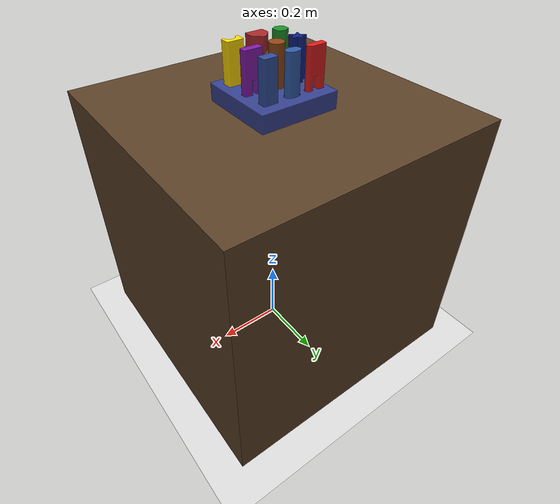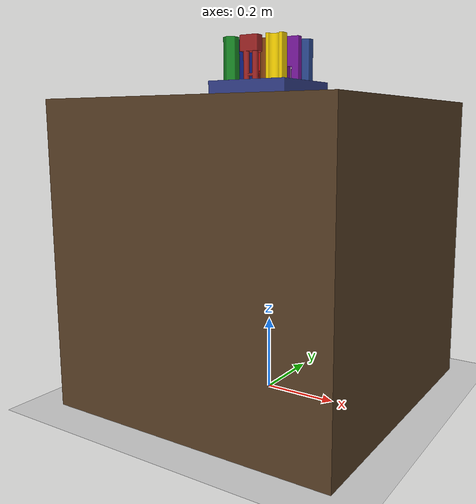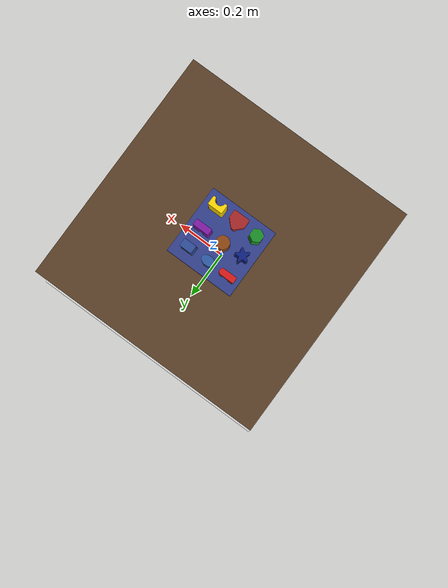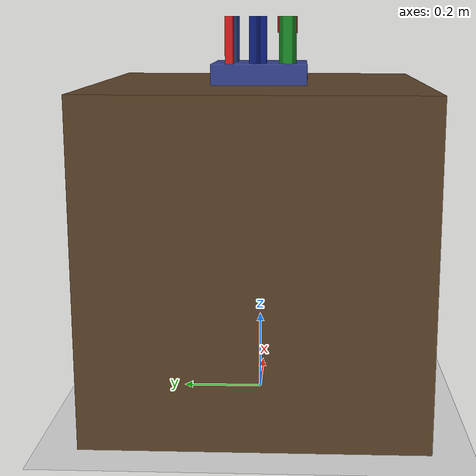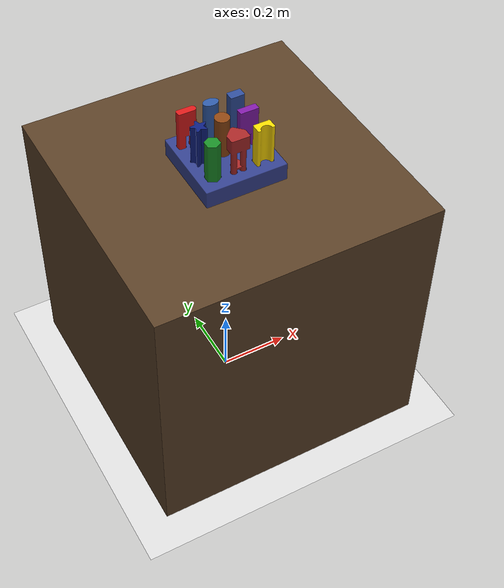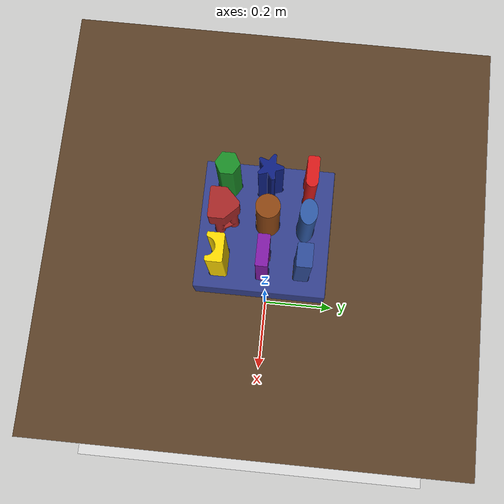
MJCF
<mujoco model="FMB M long">
  <compiler angle="radian" autolimits="true" meshdir="obj" texturedir="obj"/>
  <option integrator="RK4"/>
  <visual><global offwidth="1280" offheight="960"/></visual>
  <include file="floor_isaac.xml"/>
  <asset>
    <texture type="2d" name="light_wood" file="light_wood_v3.png"/>
    <material name="wt" texture="light_wood" specular="0.5" shininess="0.5" rgba="0.5 0.5 0.5 1"/>
    <mesh name="board_vis" file="hole_board_2/hole_board_2.obj"/>
    <mesh name="bc0" file="hole_board_2/hole_board_2_collision_0.obj"/>
    <mesh name="bc1" file="hole_board_2/hole_board_2_collision_1.obj"/>
    <mesh name="bc2" file="hole_board_2/hole_board_2_collision_10.obj"/>
    <mesh name="bc3" file="hole_board_2/hole_board_2_collision_100.obj"/>
    <mesh name="bc4" file="hole_board_2/hole_board_2_collision_101.obj"/>
    <mesh name="bc5" file="hole_board_2/hole_board_2_collision_102.obj"/>
    <mesh name="bc6" file="hole_board_2/hole_board_2_collision_103.obj"/>
    <mesh name="bc7" file="hole_board_2/hole_board_2_collision_104.obj"/>
    <mesh name="bc8" file="hole_board_2/hole_board_2_collision_105.obj"/>
    <mesh name="bc9" file="hole_board_2/hole_board_2_collision_106.obj"/>
    <mesh name="bc10" file="hole_board_2/hole_board_2_collision_107.obj"/>
    <mesh name="bc11" file="hole_board_2/hole_board_2_collision_108.obj"/>
    <mesh name="bc12" file="hole_board_2/hole_board_2_collision_109.obj"/>
    <mesh name="bc13" file="hole_board_2/hole_board_2_collision_11.obj"/>
    <mesh name="bc14" file="hole_board_2/hole_board_2_collision_110.obj"/>
    <mesh name="bc15" file="hole_board_2/hole_board_2_collision_111.obj"/>
    <mesh name="bc16" file="hole_board_2/hole_board_2_collision_112.obj"/>
    <mesh name="bc17" file="hole_board_2/hole_board_2_collision_113.obj"/>
    <mesh name="bc18" file="hole_board_2/hole_board_2_collision_114.obj"/>
    <mesh name="bc19" file="hole_board_2/hole_board_2_collision_115.obj"/>
    <mesh name="bc20" file="hole_board_2/hole_board_2_collision_116.obj"/>
    <mesh name="bc21" file="hole_board_2/hole_board_2_collision_117.obj"/>
    <mesh name="bc22" file="hole_board_2/hole_board_2_collision_118.obj"/>
    <mesh name="bc23" file="hole_board_2/hole_board_2_collision_119.obj"/>
    <mesh name="bc24" file="hole_board_2/hole_board_2_collision_12.obj"/>
    <mesh name="bc25" file="hole_board_2/hole_board_2_collision_120.obj"/>
    <mesh name="bc26" file="hole_board_2/hole_board_2_collision_121.obj"/>
    <mesh name="bc27" file="hole_board_2/hole_board_2_collision_122.obj"/>
    <mesh name="bc28" file="hole_board_2/hole_board_2_collision_123.obj"/>
    <mesh name="bc29" file="hole_board_2/hole_board_2_collision_124.obj"/>
    <mesh name="bc30" file="hole_board_2/hole_board_2_collision_125.obj"/>
    <mesh name="bc31" file="hole_board_2/hole_board_2_collision_126.obj"/>
    <mesh name="bc32" file="hole_board_2/hole_board_2_collision_127.obj"/>
    <mesh name="bc33" file="hole_board_2/hole_board_2_collision_128.obj"/>
    <mesh name="bc34" file="hole_board_2/hole_board_2_collision_129.obj"/>
    <mesh name="bc35" file="hole_board_2/hole_board_2_collision_13.obj"/>
    <mesh name="bc36" file="hole_board_2/hole_board_2_collision_130.obj"/>
    <mesh name="bc37" file="hole_board_2/hole_board_2_collision_131.obj"/>
    <mesh name="bc38" file="hole_board_2/hole_board_2_collision_132.obj"/>
    <mesh name="bc39" file="hole_board_2/hole_board_2_collision_133.obj"/>
    <mesh name="bc40" file="hole_board_2/hole_board_2_collision_134.obj"/>
    <mesh name="bc41" file="hole_board_2/hole_board_2_collision_135.obj"/>
    <mesh name="bc42" file="hole_board_2/hole_board_2_collision_136.obj"/>
    <mesh name="bc43" file="hole_board_2/hole_board_2_collision_137.obj"/>
    <mesh name="bc44" file="hole_board_2/hole_board_2_collision_138.obj"/>
    <mesh name="bc45" file="hole_board_2/hole_board_2_collision_139.obj"/>
    <mesh name="bc46" file="hole_board_2/hole_board_2_collision_14.obj"/>
    <mesh name="bc47" file="hole_board_2/hole_board_2_collision_140.obj"/>
    <mesh name="bc48" file="hole_board_2/hole_board_2_collision_141.obj"/>
    <mesh name="bc49" file="hole_board_2/hole_board_2_collision_142.obj"/>
    <mesh name="bc50" file="hole_board_2/hole_board_2_collision_143.obj"/>
    <mesh name="bc51" file="hole_board_2/hole_board_2_collision_15.obj"/>
    <mesh name="bc52" file="hole_board_2/hole_board_2_collision_16.obj"/>
    <mesh name="bc53" file="hole_board_2/hole_board_2_collision_17.obj"/>
    <mesh name="bc54" file="hole_board_2/hole_board_2_collision_18.obj"/>
    <mesh name="bc55" file="hole_board_2/hole_board_2_collision_19.obj"/>
    <mesh name="bc56" file="hole_board_2/hole_board_2_collision_2.obj"/>
    <mesh name="bc57" file="hole_board_2/hole_board_2_collision_20.obj"/>
    <mesh name="bc58" file="hole_board_2/hole_board_2_collision_21.obj"/>
    <mesh name="bc59" file="hole_board_2/hole_board_2_collision_22.obj"/>
    <mesh name="bc60" file="hole_board_2/hole_board_2_collision_23.obj"/>
    <mesh name="bc61" file="hole_board_2/hole_board_2_collision_24.obj"/>
    <mesh name="bc62" file="hole_board_2/hole_board_2_collision_25.obj"/>
    <mesh name="bc63" file="hole_board_2/hole_board_2_collision_26.obj"/>
    <mesh name="bc64" file="hole_board_2/hole_board_2_collision_27.obj"/>
    <mesh name="bc65" file="hole_board_2/hole_board_2_collision_28.obj"/>
    <mesh name="bc66" file="hole_board_2/hole_board_2_collision_29.obj"/>
    <mesh name="bc67" file="hole_board_2/hole_board_2_collision_3.obj"/>
    <mesh name="bc68" file="hole_board_2/hole_board_2_collision_30.obj"/>
    <mesh name="bc69" file="hole_board_2/hole_board_2_collision_31.obj"/>
    <mesh name="bc70" file="hole_board_2/hole_board_2_collision_32.obj"/>
    <mesh name="bc71" file="hole_board_2/hole_board_2_collision_33.obj"/>
    <mesh name="bc72" file="hole_board_2/hole_board_2_collision_34.obj"/>
    <mesh name="bc73" file="hole_board_2/hole_board_2_collision_35.obj"/>
    <mesh name="bc74" file="hole_board_2/hole_board_2_collision_36.obj"/>
    <mesh name="bc75" file="hole_board_2/hole_board_2_collision_37.obj"/>
    <mesh name="bc76" file="hole_board_2/hole_board_2_collision_38.obj"/>
    <mesh name="bc77" file="hole_board_2/hole_board_2_collision_39.obj"/>
    <mesh name="bc78" file="hole_board_2/hole_board_2_collision_4.obj"/>
    <mesh name="bc79" file="hole_board_2/hole_board_2_collision_40.obj"/>
    <mesh name="bc80" file="hole_board_2/hole_board_2_collision_41.obj"/>
    <mesh name="bc81" file="hole_board_2/hole_board_2_collision_42.obj"/>
    <mesh name="bc82" file="hole_board_2/hole_board_2_collision_43.obj"/>
    <mesh name="bc83" file="hole_board_2/hole_board_2_collision_44.obj"/>
    <mesh name="bc84" file="hole_board_2/hole_board_2_collision_45.obj"/>
    <mesh name="bc85" file="hole_board_2/hole_board_2_collision_46.obj"/>
    <mesh name="bc86" file="hole_board_2/hole_board_2_collision_47.obj"/>
    <mesh name="bc87" file="hole_board_2/hole_board_2_collision_48.obj"/>
    <mesh name="bc88" file="hole_board_2/hole_board_2_collision_49.obj"/>
    <mesh name="bc89" file="hole_board_2/hole_board_2_collision_5.obj"/>
    <mesh name="bc90" file="hole_board_2/hole_board_2_collision_50.obj"/>
    <mesh name="bc91" file="hole_board_2/hole_board_2_collision_51.obj"/>
    <mesh name="bc92" file="hole_board_2/hole_board_2_collision_52.obj"/>
    <mesh name="bc93" file="hole_board_2/hole_board_2_collision_53.obj"/>
    <mesh name="bc94" file="hole_board_2/hole_board_2_collision_54.obj"/>
    <mesh name="bc95" file="hole_board_2/hole_board_2_collision_55.obj"/>
    <mesh name="bc96" file="hole_board_2/hole_board_2_collision_56.obj"/>
    <mesh name="bc97" file="hole_board_2/hole_board_2_collision_57.obj"/>
    <mesh name="bc98" file="hole_board_2/hole_board_2_collision_58.obj"/>
    <mesh name="bc99" file="hole_board_2/hole_board_2_collision_59.obj"/>
    <mesh name="bc100" file="hole_board_2/hole_board_2_collision_6.obj"/>
    <mesh name="bc101" file="hole_board_2/hole_board_2_collision_60.obj"/>
    <mesh name="bc102" file="hole_board_2/hole_board_2_collision_61.obj"/>
    <mesh name="bc103" file="hole_board_2/hole_board_2_collision_62.obj"/>
    <mesh name="bc104" file="hole_board_2/hole_board_2_collision_63.obj"/>
    <mesh name="bc105" file="hole_board_2/hole_board_2_collision_64.obj"/>
    <mesh name="bc106" file="hole_board_2/hole_board_2_collision_65.obj"/>
    <mesh name="bc107" file="hole_board_2/hole_board_2_collision_66.obj"/>
    <mesh name="bc108" file="hole_board_2/hole_board_2_collision_67.obj"/>
    <mesh name="bc109" file="hole_board_2/hole_board_2_collision_68.obj"/>
    <mesh name="bc110" file="hole_board_2/hole_board_2_collision_69.obj"/>
    <mesh name="bc111" file="hole_board_2/hole_board_2_collision_7.obj"/>
    <mesh name="bc112" file="hole_board_2/hole_board_2_collision_70.obj"/>
    <mesh name="bc113" file="hole_board_2/hole_board_2_collision_71.obj"/>
    <mesh name="bc114" file="hole_board_2/hole_board_2_collision_72.obj"/>
    <mesh name="bc115" file="hole_board_2/hole_board_2_collision_73.obj"/>
    <mesh name="bc116" file="hole_board_2/hole_board_2_collision_74.obj"/>
    <mesh name="bc117" file="hole_board_2/hole_board_2_collision_75.obj"/>
    <mesh name="bc118" file="hole_board_2/hole_board_2_collision_76.obj"/>
    <mesh name="bc119" file="hole_board_2/hole_board_2_collision_77.obj"/>
    <mesh name="bc120" file="hole_board_2/hole_board_2_collision_78.obj"/>
    <mesh name="bc121" file="hole_board_2/hole_board_2_collision_79.obj"/>
    <mesh name="bc122" file="hole_board_2/hole_board_2_collision_8.obj"/>
    <mesh name="bc123" file="hole_board_2/hole_board_2_collision_80.obj"/>
    <mesh name="bc124" file="hole_board_2/hole_board_2_collision_81.obj"/>
    <mesh name="bc125" file="hole_board_2/hole_board_2_collision_82.obj"/>
    <mesh name="bc126" file="hole_board_2/hole_board_2_collision_83.obj"/>
    <mesh name="bc127" file="hole_board_2/hole_board_2_collision_84.obj"/>
    <mesh name="bc128" file="hole_board_2/hole_board_2_collision_85.obj"/>
    <mesh name="bc129" file="hole_board_2/hole_board_2_collision_86.obj"/>
    <mesh name="bc130" file="hole_board_2/hole_board_2_collision_87.obj"/>
    <mesh name="bc131" file="hole_board_2/hole_board_2_collision_88.obj"/>
    <mesh name="bc132" file="hole_board_2/hole_board_2_collision_89.obj"/>
    <mesh name="bc133" file="hole_board_2/hole_board_2_collision_9.obj"/>
    <mesh name="bc134" file="hole_board_2/hole_board_2_collision_90.obj"/>
    <mesh name="bc135" file="hole_board_2/hole_board_2_collision_91.obj"/>
    <mesh name="bc136" file="hole_board_2/hole_board_2_collision_92.obj"/>
    <mesh name="bc137" file="hole_board_2/hole_board_2_collision_93.obj"/>
    <mesh name="bc138" file="hole_board_2/hole_board_2_collision_94.obj"/>
    <mesh name="bc139" file="hole_board_2/hole_board_2_collision_95.obj"/>
    <mesh name="bc140" file="hole_board_2/hole_board_2_collision_96.obj"/>
    <mesh name="bc141" file="hole_board_2/hole_board_2_collision_97.obj"/>
    <mesh name="bc142" file="hole_board_2/hole_board_2_collision_98.obj"/>
    <mesh name="bc143" file="hole_board_2/hole_board_2_collision_99.obj"/>
    <mesh name="peg_circle_M_long" file="peg_circle_M_long/peg_circle_M_long.obj"/>
    <mesh name="peg_circle_M_long_c0" file="peg_circle_M_long/peg_circle_M_long_collision_0.obj"/>
    <mesh name="peg_oval_M_long" file="peg_oval_M_long/peg_oval_M_long.obj"/>
    <mesh name="peg_oval_M_long_c0" file="peg_oval_M_long/peg_oval_M_long_collision_0.obj"/>
    <mesh name="peg_rectangle_M_long" file="peg_rectangle_M_long/peg_rectangle_M_long.obj"/>
    <mesh name="peg_rectangle_M_long_c0" file="peg_rectangle_M_long/peg_rectangle_M_long_collision_0.obj"/>
    <mesh name="peg_hexagon_M_long" file="peg_hexagon_M_long/peg_hexagon_M_long.obj"/>
    <mesh name="peg_hexagon_M_long_c0" file="peg_hexagon_M_long/peg_hexagon_M_long_collision_0.obj"/>
    <mesh name="peg_arch_M_long" file="peg_arch_M_long/peg_arch_M_long.obj"/>
    <mesh name="peg_arch_M_long_c0" file="peg_arch_M_long/peg_arch_M_long_collision_0.obj"/>
    <mesh name="peg_arch_M_long_c1" file="peg_arch_M_long/peg_arch_M_long_collision_1.obj"/>
    <mesh name="peg_star_M_long" file="peg_star_M_long/peg_star_M_long.obj"/>
    <mesh name="peg_star_M_long_c0" file="peg_star_M_long/peg_star_M_long_collision_0.obj"/>
    <mesh name="peg_star_M_long_c1" file="peg_star_M_long/peg_star_M_long_collision_1.obj"/>
    <mesh name="peg_star_M_long_c2" file="peg_star_M_long/peg_star_M_long_collision_2.obj"/>
    <mesh name="peg_star_M_long_c3" file="peg_star_M_long/peg_star_M_long_collision_3.obj"/>
    <mesh name="peg_3prong_M_long" file="peg_3prong_M_long/peg_3prong_M_long.obj"/>
    <mesh name="peg_3prong_M_long_c0" file="peg_3prong_M_long/peg_3prong_M_long_collision_0.obj"/>
    <mesh name="peg_3prong_M_long_c1" file="peg_3prong_M_long/peg_3prong_M_long_collision_1.obj"/>
    <mesh name="peg_3prong_M_long_c10" file="peg_3prong_M_long/peg_3prong_M_long_collision_10.obj"/>
    <mesh name="peg_3prong_M_long_c11" file="peg_3prong_M_long/peg_3prong_M_long_collision_11.obj"/>
    <mesh name="peg_3prong_M_long_c12" file="peg_3prong_M_long/peg_3prong_M_long_collision_12.obj"/>
    <mesh name="peg_3prong_M_long_c2" file="peg_3prong_M_long/peg_3prong_M_long_collision_2.obj"/>
    <mesh name="peg_3prong_M_long_c3" file="peg_3prong_M_long/peg_3prong_M_long_collision_3.obj"/>
    <mesh name="peg_3prong_M_long_c4" file="peg_3prong_M_long/peg_3prong_M_long_collision_4.obj"/>
    <mesh name="peg_3prong_M_long_c5" file="peg_3prong_M_long/peg_3prong_M_long_collision_5.obj"/>
    <mesh name="peg_3prong_M_long_c6" file="peg_3prong_M_long/peg_3prong_M_long_collision_6.obj"/>
    <mesh name="peg_3prong_M_long_c7" file="peg_3prong_M_long/peg_3prong_M_long_collision_7.obj"/>
    <mesh name="peg_3prong_M_long_c8" file="peg_3prong_M_long/peg_3prong_M_long_collision_8.obj"/>
    <mesh name="peg_3prong_M_long_c9" file="peg_3prong_M_long/peg_3prong_M_long_collision_9.obj"/>
    <mesh name="peg_doublesquare_M_long" file="peg_doublesquare_M_long/peg_doublesquare_M_long.obj"/>
    <mesh name="peg_doublesquare_M_long_c0" file="peg_doublesquare_M_long/peg_doublesquare_M_long_collision_0.obj"/>
    <mesh name="peg_doublesquare_M_long_c1" file="peg_doublesquare_M_long/peg_doublesquare_M_long_collision_1.obj"/>
    <mesh name="peg_doublesquare_M_long_c2" file="peg_doublesquare_M_long/peg_doublesquare_M_long_collision_2.obj"/>
    <mesh name="peg_squarecircle_M_long" file="peg_squarecircle_M_long/peg_squarecircle_M_long.obj"/>
    <mesh name="peg_squarecircle_M_long_c0" file="peg_squarecircle_M_long/peg_squarecircle_M_long_collision_0.obj"/>
    <mesh name="peg_squarecircle_M_long_c1" file="peg_squarecircle_M_long/peg_squarecircle_M_long_collision_1.obj"/>
    <mesh name="peg_squarecircle_M_long_c2" file="peg_squarecircle_M_long/peg_squarecircle_M_long_collision_2.obj"/>
  </asset>
  <worldbody>
    <body name="table"><geom type="box" size="0.4 0.4 0.4" pos="0 0 0.4" material="wt" mass="100"/></body>
    <body name="board" pos="0 0 0.8">
      <geom mesh="board_vis" group="2" type="mesh" contype="0" conaffinity="0" rgba="0.2 0.25 0.55 1"/>
      <geom mesh="bc0" type="mesh" rgba="0 0 0 0"/>
      <geom mesh="bc1" type="mesh" rgba="0 0 0 0"/>
      <geom mesh="bc2" type="mesh" rgba="0 0 0 0"/>
      <geom mesh="bc3" type="mesh" rgba="0 0 0 0"/>
      <geom mesh="bc4" type="mesh" rgba="0 0 0 0"/>
      <geom mesh="bc5" type="mesh" rgba="0 0 0 0"/>
      <geom mesh="bc6" type="mesh" rgba="0 0 0 0"/>
      <geom mesh="bc7" type="mesh" rgba="0 0 0 0"/>
      <geom mesh="bc8" type="mesh" rgba="0 0 0 0"/>
      <geom mesh="bc9" type="mesh" rgba="0 0 0 0"/>
      <geom mesh="bc10" type="mesh" rgba="0 0 0 0"/>
      <geom mesh="bc11" type="mesh" rgba="0 0 0 0"/>
      <geom mesh="bc12" type="mesh" rgba="0 0 0 0"/>
      <geom mesh="bc13" type="mesh" rgba="0 0 0 0"/>
      <geom mesh="bc14" type="mesh" rgba="0 0 0 0"/>
      <geom mesh="bc15" type="mesh" rgba="0 0 0 0"/>
      <geom mesh="bc16" type="mesh" rgba="0 0 0 0"/>
      <geom mesh="bc17" type="mesh" rgba="0 0 0 0"/>
      <geom mesh="bc18" type="mesh" rgba="0 0 0 0"/>
      <geom mesh="bc19" type="mesh" rgba="0 0 0 0"/>
      <geom mesh="bc20" type="mesh" rgba="0 0 0 0"/>
      <geom mesh="bc21" type="mesh" rgba="0 0 0 0"/>
      <geom mesh="bc22" type="mesh" rgba="0 0 0 0"/>
      <geom mesh="bc23" type="mesh" rgba="0 0 0 0"/>
      <geom mesh="bc24" type="mesh" rgba="0 0 0 0"/>
      <geom mesh="bc25" type="mesh" rgba="0 0 0 0"/>
      <geom mesh="bc26" type="mesh" rgba="0 0 0 0"/>
      <geom mesh="bc27" type="mesh" rgba="0 0 0 0"/>
      <geom mesh="bc28" type="mesh" rgba="0 0 0 0"/>
      <geom mesh="bc29" type="mesh" rgba="0 0 0 0"/>
      <geom mesh="bc30" type="mesh" rgba="0 0 0 0"/>
      <geom mesh="bc31" type="mesh" rgba="0 0 0 0"/>
      <geom mesh="bc32" type="mesh" rgba="0 0 0 0"/>
      <geom mesh="bc33" type="mesh" rgba="0 0 0 0"/>
      <geom mesh="bc34" type="mesh" rgba="0 0 0 0"/>
      <geom mesh="bc35" type="mesh" rgba="0 0 0 0"/>
      <geom mesh="bc36" type="mesh" rgba="0 0 0 0"/>
      <geom mesh="bc37" type="mesh" rgba="0 0 0 0"/>
      <geom mesh="bc38" type="mesh" rgba="0 0 0 0"/>
      <geom mesh="bc39" type="mesh" rgba="0 0 0 0"/>
      <geom mesh="bc40" type="mesh" rgba="0 0 0 0"/>
      <geom mesh="bc41" type="mesh" rgba="0 0 0 0"/>
      <geom mesh="bc42" type="mesh" rgba="0 0 0 0"/>
      <geom mesh="bc43" type="mesh" rgba="0 0 0 0"/>
      <geom mesh="bc44" type="mesh" rgba="0 0 0 0"/>
      <geom mesh="bc45" type="mesh" rgba="0 0 0 0"/>
      <geom mesh="bc46" type="mesh" rgba="0 0 0 0"/>
      <geom mesh="bc47" type="mesh" rgba="0 0 0 0"/>
      <geom mesh="bc48" type="mesh" rgba="0 0 0 0"/>
      <geom mesh="bc49" type="mesh" rgba="0 0 0 0"/>
      <geom mesh="bc50" type="mesh" rgba="0 0 0 0"/>
      <geom mesh="bc51" type="mesh" rgba="0 0 0 0"/>
      <geom mesh="bc52" type="mesh" rgba="0 0 0 0"/>
      <geom mesh="bc53" type="mesh" rgba="0 0 0 0"/>
      <geom mesh="bc54" type="mesh" rgba="0 0 0 0"/>
      <geom mesh="bc55" type="mesh" rgba="0 0 0 0"/>
      <geom mesh="bc56" type="mesh" rgba="0 0 0 0"/>
      <geom mesh="bc57" type="mesh" rgba="0 0 0 0"/>
      <geom mesh="bc58" type="mesh" rgba="0 0 0 0"/>
      <geom mesh="bc59" type="mesh" rgba="0 0 0 0"/>
      <geom mesh="bc60" type="mesh" rgba="0 0 0 0"/>
      <geom mesh="bc61" type="mesh" rgba="0 0 0 0"/>
      <geom mesh="bc62" type="mesh" rgba="0 0 0 0"/>
      <geom mesh="bc63" type="mesh" rgba="0 0 0 0"/>
      <geom mesh="bc64" type="mesh" rgba="0 0 0 0"/>
      <geom mesh="bc65" type="mesh" rgba="0 0 0 0"/>
      <geom mesh="bc66" type="mesh" rgba="0 0 0 0"/>
      <geom mesh="bc67" type="mesh" rgba="0 0 0 0"/>
      <geom mesh="bc68" type="mesh" rgba="0 0 0 0"/>
      <geom mesh="bc69" type="mesh" rgba="0 0 0 0"/>
      <geom mesh="bc70" type="mesh" rgba="0 0 0 0"/>
      <geom mesh="bc71" type="mesh" rgba="0 0 0 0"/>
      <geom mesh="bc72" type="mesh" rgba="0 0 0 0"/>
      <geom mesh="bc73" type="mesh" rgba="0 0 0 0"/>
      <geom mesh="bc74" type="mesh" rgba="0 0 0 0"/>
      <geom mesh="bc75" type="mesh" rgba="0 0 0 0"/>
      <geom mesh="bc76" type="mesh" rgba="0 0 0 0"/>
      <geom mesh="bc77" type="mesh" rgba="0 0 0 0"/>
      <geom mesh="bc78" type="mesh" rgba="0 0 0 0"/>
      <geom mesh="bc79" type="mesh" rgba="0 0 0 0"/>
      <geom mesh="bc80" type="mesh" rgba="0 0 0 0"/>
      <geom mesh="bc81" type="mesh" rgba="0 0 0 0"/>
      <geom mesh="bc82" type="mesh" rgba="0 0 0 0"/>
      <geom mesh="bc83" type="mesh" rgba="0 0 0 0"/>
      <geom mesh="bc84" type="mesh" rgba="0 0 0 0"/>
      <geom mesh="bc85" type="mesh" rgba="0 0 0 0"/>
      <geom mesh="bc86" type="mesh" rgba="0 0 0 0"/>
      <geom mesh="bc87" type="mesh" rgba="0 0 0 0"/>
      <geom mesh="bc88" type="mesh" rgba="0 0 0 0"/>
      <geom mesh="bc89" type="mesh" rgba="0 0 0 0"/>
      <geom mesh="bc90" type="mesh" rgba="0 0 0 0"/>
      <geom mesh="bc91" type="mesh" rgba="0 0 0 0"/>
      <geom mesh="bc92" type="mesh" rgba="0 0 0 0"/>
      <geom mesh="bc93" type="mesh" rgba="0 0 0 0"/>
      <geom mesh="bc94" type="mesh" rgba="0 0 0 0"/>
      <geom mesh="bc95" type="mesh" rgba="0 0 0 0"/>
      <geom mesh="bc96" type="mesh" rgba="0 0 0 0"/>
      <geom mesh="bc97" type="mesh" rgba="0 0 0 0"/>
      <geom mesh="bc98" type="mesh" rgba="0 0 0 0"/>
      <geom mesh="bc99" type="mesh" rgba="0 0 0 0"/>
      <geom mesh="bc100" type="mesh" rgba="0 0 0 0"/>
      <geom mesh="bc101" type="mesh" rgba="0 0 0 0"/>
      <geom mesh="bc102" type="mesh" rgba="0 0 0 0"/>
      <geom mesh="bc103" type="mesh" rgba="0 0 0 0"/>
      <geom mesh="bc104" type="mesh" rgba="0 0 0 0"/>
      <geom mesh="bc105" type="mesh" rgba="0 0 0 0"/>
      <geom mesh="bc106" type="mesh" rgba="0 0 0 0"/>
      <geom mesh="bc107" type="mesh" rgba="0 0 0 0"/>
      <geom mesh="bc108" type="mesh" rgba="0 0 0 0"/>
      <geom mesh="bc109" type="mesh" rgba="0 0 0 0"/>
      <geom mesh="bc110" type="mesh" rgba="0 0 0 0"/>
      <geom mesh="bc111" type="mesh" rgba="0 0 0 0"/>
      <geom mesh="bc112" type="mesh" rgba="0 0 0 0"/>
      <geom mesh="bc113" type="mesh" rgba="0 0 0 0"/>
      <geom mesh="bc114" type="mesh" rgba="0 0 0 0"/>
      <geom mesh="bc115" type="mesh" rgba="0 0 0 0"/>
      <geom mesh="bc116" type="mesh" rgba="0 0 0 0"/>
      <geom mesh="bc117" type="mesh" rgba="0 0 0 0"/>
      <geom mesh="bc118" type="mesh" rgba="0 0 0 0"/>
      <geom mesh="bc119" type="mesh" rgba="0 0 0 0"/>
      <geom mesh="bc120" type="mesh" rgba="0 0 0 0"/>
      <geom mesh="bc121" type="mesh" rgba="0 0 0 0"/>
      <geom mesh="bc122" type="mesh" rgba="0 0 0 0"/>
      <geom mesh="bc123" type="mesh" rgba="0 0 0 0"/>
      <geom mesh="bc124" type="mesh" rgba="0 0 0 0"/>
      <geom mesh="bc125" type="mesh" rgba="0 0 0 0"/>
      <geom mesh="bc126" type="mesh" rgba="0 0 0 0"/>
      <geom mesh="bc127" type="mesh" rgba="0 0 0 0"/>
      <geom mesh="bc128" type="mesh" rgba="0 0 0 0"/>
      <geom mesh="bc129" type="mesh" rgba="0 0 0 0"/>
      <geom mesh="bc130" type="mesh" rgba="0 0 0 0"/>
      <geom mesh="bc131" type="mesh" rgba="0 0 0 0"/>
      <geom mesh="bc132" type="mesh" rgba="0 0 0 0"/>
      <geom mesh="bc133" type="mesh" rgba="0 0 0 0"/>
      <geom mesh="bc134" type="mesh" rgba="0 0 0 0"/>
      <geom mesh="bc135" type="mesh" rgba="0 0 0 0"/>
      <geom mesh="bc136" type="mesh" rgba="0 0 0 0"/>
      <geom mesh="bc137" type="mesh" rgba="0 0 0 0"/>
      <geom mesh="bc138" type="mesh" rgba="0 0 0 0"/>
      <geom mesh="bc139" type="mesh" rgba="0 0 0 0"/>
      <geom mesh="bc140" type="mesh" rgba="0 0 0 0"/>
      <geom mesh="bc141" type="mesh" rgba="0 0 0 0"/>
      <geom mesh="bc142" type="mesh" rgba="0 0 0 0"/>
      <geom mesh="bc143" type="mesh" rgba="0 0 0 0"/>
      <geom type="box" pos="0 0 0.005" size="0.115 0.115 0.005" rgba="0 0 0 0"/>
      <geom type="box" pos="-0.112 0 0.025" size="0.003 0.115 0.025" rgba="0 0 0 0"/>
      <geom type="box" pos="0.112 0 0.025" size="0.003 0.115 0.025" rgba="0 0 0 0"/>
      <geom type="box" pos="0 0.112 0.025" size="0.115 0.003 0.025" rgba="0 0 0 0"/>
      <geom type="box" pos="0 -0.112 0.025" size="0.115 0.003 0.025" rgba="0 0 0 0"/>
      <geom type="box" pos="-0.04 -0.0285 0.025" size="0.003 0.0865 0.025" rgba="0 0 0 0"/>
      <geom type="box" pos="-0.04 0.0998 0.025" size="0.003 0.0152 0.025" rgba="0 0 0 0"/>
      <geom type="box" pos="0.0295 0.0000 0.025" size="0.003 0.1150 0.025" rgba="0 0 0 0"/>
      <geom type="box" pos="0.0000 -0.035 0.025" size="0.1150 0.003 0.025" rgba="0 0 0 0"/>
      <geom type="box" pos="0.0000 0.036 0.025" size="0.1150 0.003 0.025" rgba="0 0 0 0"/>
    </body>
    <body name="circle" pos="-0.00774999999999991 0.004250000000000101 0.811">
      <joint type="free"/>
      <geom mesh="peg_circle_M_long" group="2" type="mesh" contype="0" conaffinity="0" rgba="0.55 0.27 0.07 1"/>
      <geom mesh="peg_circle_M_long_c0" type="mesh" rgba="0 0 0 0"/>
    </body>
    <body name="oval" pos="-0.004749999999999907 0.07050000000000016 0.811">
      <joint type="free"/>
      <geom mesh="peg_oval_M_long" group="2" type="mesh" contype="0" conaffinity="0" rgba="0.18 0.35 0.65 1"/>
      <geom mesh="peg_oval_M_long_c0" type="mesh" rgba="0 0 0 0"/>
    </body>
    <body name="rectangle" pos="0.06625000000000016 0.07025000000000016 0.811">
      <joint type="free"/>
      <geom mesh="peg_rectangle_M_long" group="2" type="mesh" contype="0" conaffinity="0" rgba="0.18 0.3 0.6 1"/>
      <geom mesh="peg_rectangle_M_long_c0" type="mesh" rgba="0 0 0 0"/>
    </body>
    <body name="hexagon" pos="-0.07324999999999997 -0.06799999999999996 0.811">
      <joint type="free"/>
      <geom mesh="peg_hexagon_M_long" group="2" type="mesh" contype="0" conaffinity="0" rgba="0.1 0.55 0.15 1"/>
      <geom mesh="peg_hexagon_M_long_c0" type="mesh" rgba="0 0 0 0"/>
    </body>
    <body name="arch" pos="0.06725000000000016 -0.07324999999999997 0.811">
      <joint type="free"/>
      <geom mesh="peg_arch_M_long" group="2" type="mesh" contype="0" conaffinity="0" rgba="1.0 0.85 0.0 1"/>
      <geom mesh="peg_arch_M_long_c0" type="mesh" rgba="0 0 0 0"/>
      <geom mesh="peg_arch_M_long_c1" type="mesh" rgba="0 0 0 0"/>
    </body>
    <body name="star" pos="-0.07374999999999997 0.0032500000000001 0.811">
      <joint type="free"/>
      <geom mesh="peg_star_M_long" group="2" type="mesh" contype="0" conaffinity="0" rgba="0.05 0.12 0.5 1"/>
      <geom mesh="peg_star_M_long_c0" type="mesh" rgba="0 0 0 0"/>
      <geom mesh="peg_star_M_long_c1" type="mesh" rgba="0 0 0 0"/>
      <geom mesh="peg_star_M_long_c2" type="mesh" rgba="0 0 0 0"/>
      <geom mesh="peg_star_M_long_c3" type="mesh" rgba="0 0 0 0"/>
    </body>
    <body name="3prong" pos="-0.006249999999999908 -0.06624987649999996 0.9610000000000001" quat="0 1 0 0">
      <joint type="free"/>
      <geom mesh="peg_3prong_M_long" group="2" type="mesh" contype="0" conaffinity="0" rgba="0.65 0.15 0.15 1"/>
      <geom mesh="peg_3prong_M_long_c0" type="mesh" rgba="0 0 0 0"/>
      <geom mesh="peg_3prong_M_long_c1" type="mesh" rgba="0 0 0 0"/>
      <geom mesh="peg_3prong_M_long_c10" type="mesh" rgba="0 0 0 0"/>
      <geom mesh="peg_3prong_M_long_c11" type="mesh" rgba="0 0 0 0"/>
      <geom mesh="peg_3prong_M_long_c12" type="mesh" rgba="0 0 0 0"/>
      <geom mesh="peg_3prong_M_long_c2" type="mesh" rgba="0 0 0 0"/>
      <geom mesh="peg_3prong_M_long_c3" type="mesh" rgba="0 0 0 0"/>
      <geom mesh="peg_3prong_M_long_c4" type="mesh" rgba="0 0 0 0"/>
      <geom mesh="peg_3prong_M_long_c5" type="mesh" rgba="0 0 0 0"/>
      <geom mesh="peg_3prong_M_long_c6" type="mesh" rgba="0 0 0 0"/>
      <geom mesh="peg_3prong_M_long_c7" type="mesh" rgba="0 0 0 0"/>
      <geom mesh="peg_3prong_M_long_c8" type="mesh" rgba="0 0 0 0"/>
      <geom mesh="peg_3prong_M_long_c9" type="mesh" rgba="0 0 0 0"/>
    </body>
    <body name="doublesquare" pos="0.06475000000000015 0.0030000000000001 0.9610000000000001" quat="0 1 0 0">
      <joint type="free"/>
      <geom mesh="peg_doublesquare_M_long" group="2" type="mesh" contype="0" conaffinity="0" rgba="0.5 0.1 0.65 1"/>
      <geom mesh="peg_doublesquare_M_long_c0" type="mesh" rgba="0 0 0 0"/>
      <geom mesh="peg_doublesquare_M_long_c1" type="mesh" rgba="0 0 0 0"/>
      <geom mesh="peg_doublesquare_M_long_c2" type="mesh" rgba="0 0 0 0"/>
    </body>
    <body name="squarecircle" pos="-0.07274994866666663 0.07125000000000016 0.9610000000000001" quat="0 1 0 0">
      <joint type="free"/>
      <geom mesh="peg_squarecircle_M_long" group="2" type="mesh" contype="0" conaffinity="0" rgba="0.85 0.1 0.1 1"/>
      <geom mesh="peg_squarecircle_M_long_c0" type="mesh" rgba="0 0 0 0"/>
      <geom mesh="peg_squarecircle_M_long_c1" type="mesh" rgba="0 0 0 0"/>
      <geom mesh="peg_squarecircle_M_long_c2" type="mesh" rgba="0 0 0 0"/>
    </body>
  </worldbody>
  <keyframe><key name="aligned" qpos="-0.00775 0.00425 0.809892 1 3.17045e-14 -1.38231e-15 4.76597e-17 -0.00472971 0.0703383 0.80991 1 0.000701026 7.10541e-05 0.000116734 0.0662056 0.0699365 0.809902 1 0.000757788 1.27108e-05 -0.00030366 -0.0733417 -0.0681714 0.809918 1 0.000657302 -0.000443133 9.82092e-07 0.0682083 -0.0710634 0.81 1 -5.0235e-06 -3.5127e-06 0.000796419 -0.0737573 0.003252 0.809979 1 -7.49175e-05 -0.000290032 1.01196e-05 -0.00628333 -0.0662773 0.959965 -8.19911e-05 1 -8.37779e-07 9.96108e-05 0.0647487 0.0027144 0.959952 -0.000766568 1 0.000272579 6.17873e-06 -0.0727691 0.0707106 0.959942 -0.000788783 0.999999 -0.00082608 5.91818e-05"/></keyframe>
</mujoco>

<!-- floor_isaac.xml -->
<mujoco model="floor and sky (isaac style)">

  <visual>
    <headlight diffuse="0.55 0.55 0.55" ambient="0.3 0.3 0.3" specular="0 0 0"/>
    <rgba haze="0.15 0.25 0.35 1"/>
  </visual>

  <asset>
    <!-- Sky -->
    <texture type="skybox" builtin="gradient" rgb1="0.3 0.5 0.7" rgb2="0 0 0" width="512" height="3072"/>
    <!-- Ground -->
    <texture type="2d" name="groundplane" builtin="checker" mark="edge" rgb1="0.9 0.9 0.9"
             rgb2="0.8 0.8 0.8" markrgb="0.8 0.8 0.8" width="1000" height="1000"/>
    <material name="groundplane" texture="groundplane" texuniform="true" texrepeat="1 1"
              reflectance="0.1"/>
  </asset>

  <worldbody>
    <light pos="1 -1 1.5" dir="-1 1 -1" diffuse="0.35 0.35 0.35" directional="true"/>
    <geom name="floor" group="1" size="0 0 0.05" type="plane" material="groundplane"/>
  </worldbody>

</mujoco>
